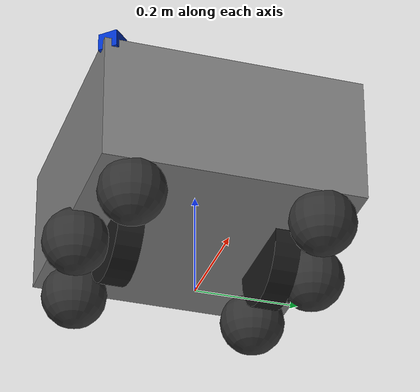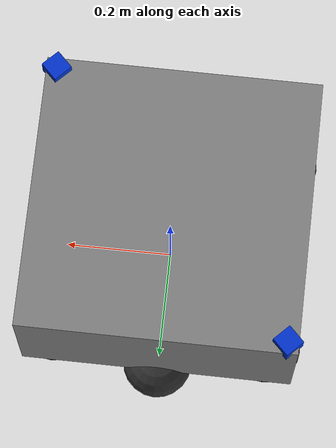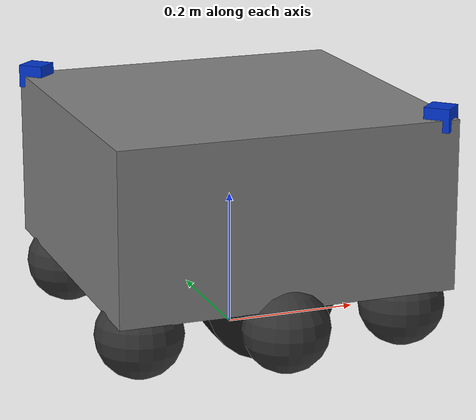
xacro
<?xml version="1.0"?>
<robot xmlns:xacro="http://www.ros.org/wiki/xacro" name="amr">

  <xacro:property name="body_length" value="0.50"/>
  <xacro:property name="body_width"  value="0.50"/>
  <xacro:property name="body_height" value="0.25"/>
  <xacro:property name="body_mass"   value="80.0"/>

  <xacro:property name="wheel_radius"     value="0.10"/>
  <xacro:property name="wheel_width"      value="0.05"/>
  <xacro:property name="wheel_mass"       value="3.0"/>
  <xacro:property name="wheel_separation" value="0.30"/>

  <xacro:macro name="box_inertia" params="m x y z">
    <inertial>
      <mass value="${m}"/>
      <inertia
        ixx="${m/12*(y*y+z*z)}" ixy="0.0" ixz="0.0"
        iyy="${m/12*(x*x+z*z)}" iyz="0.0"
        izz="${m/12*(x*x+y*y)}"/>
    </inertial>
  </xacro:macro>

  <xacro:macro name="cylinder_inertia_y" params="m r h">
    <inertial>
      <mass value="${m}"/>
      <inertia
        ixx="${m/12*(3*r*r+h*h)}" ixy="0.0" ixz="0.0"
        iyy="${m/2*r*r}"          iyz="0.0"
        izz="${m/12*(3*r*r+h*h)}"/>
    </inertial>
  </xacro:macro>

  <link name="base_footprint"/>

  <joint name="base_footprint_joint" type="fixed">
    <parent link="base_footprint"/>
    <child  link="base_link"/>
    <origin xyz="0 0 ${wheel_radius}" rpy="0 0 0"/>
  </joint>

  <link name="base_link">
    <visual>
      <origin xyz="0 0 ${body_height/2}" rpy="0 0 0"/>
      <geometry>
        <box size="${body_length} ${body_width} ${body_height}"/>
      </geometry>
      <material name="grey"><color rgba="0.5 0.5 0.5 1.0"/></material>
    </visual>
    <collision>
      <origin xyz="0 0 ${body_height/2}" rpy="0 0 0"/>
      <geometry>
        <box size="${body_length} ${body_width} ${body_height}"/>
      </geometry>
    </collision>
    <xacro:box_inertia m="${body_mass}" x="${body_length}" y="${body_width}" z="${body_height}"/>
  </link>

  <xacro:macro name="drive_wheel" params="name reflect">
    <link name="wheel_${name}_link">
      <visual>
        <origin xyz="0 0 0" rpy="${pi/2} 0 0"/>
        <geometry>
          <cylinder radius="${wheel_radius}" length="${wheel_width}"/>
        </geometry>
        <material name="black"><color rgba="0.1 0.1 0.1 1.0"/></material>
      </visual>
      <collision>
        <origin xyz="0 0 0" rpy="${pi/2} 0 0"/>
        <geometry>
          <cylinder radius="${wheel_radius}" length="${wheel_width}"/>
        </geometry>
      </collision>
      <xacro:cylinder_inertia_y m="${wheel_mass}" r="${wheel_radius}" h="${wheel_width}"/>
    </link>
    <joint name="wheel_${name}_joint" type="continuous">
      <parent link="base_link"/>
      <child  link="wheel_${name}_link"/>
      <origin xyz="0 ${reflect * wheel_separation/2} 0" rpy="0 0 0"/>
      <axis xyz="0 1 0"/>
    </joint>
  </xacro:macro>

  <xacro:drive_wheel name="left"  reflect=" 1"/>
  <xacro:drive_wheel name="right" reflect="-1"/>

  <xacro:property name="caster_radius" value="0.0635"/>
  <xacro:property name="caster_mass"   value="0.8"/>

  <xacro:macro name="sphere_inertia" params="m r">
    <inertial>
      <mass value="${m}"/>
      <inertia
        ixx="${2/5*m*r*r}" ixy="0.0" ixz="0.0"
        iyy="${2/5*m*r*r}" iyz="0.0"
        izz="${2/5*m*r*r}"/>
    </inertial>
  </xacro:macro>

  <xacro:macro name="caster_wheel" params="name xp yp">
    <link name="caster_${name}_link">
      <visual>
        <geometry><sphere radius="${caster_radius}"/></geometry>
        <material name="dark_grey"><color rgba="0.2 0.2 0.2 1.0"/></material>
      </visual>
      <collision>
        <geometry><sphere radius="${caster_radius}"/></geometry>
      </collision>
      <xacro:sphere_inertia m="${caster_mass}" r="${caster_radius}"/>
    </link>
    <joint name="caster_${name}_joint" type="fixed">
      <parent link="base_link"/>
      <child  link="caster_${name}_link"/>
      <origin xyz="${xp} ${yp} ${-wheel_radius+caster_radius+0.002}" rpy="0 0 0"/>
    </joint>

    <gazebo reference="caster_${name}_link">
      <mu1>0.0</mu1>
      <mu2>0.0</mu2>
      <material>Gazebo/DarkGrey</material>
    </gazebo>
  </xacro:macro>

  <xacro:caster_wheel name="front_left"  xp=" 0.20" yp=" 0.18"/>
  <xacro:caster_wheel name="front_right" xp=" 0.20" yp="-0.18"/>
  <xacro:caster_wheel name="mid_left"    xp=" 0.00" yp=" 0.23"/>
  <xacro:caster_wheel name="mid_right"   xp=" 0.00" yp="-0.23"/>
  <xacro:caster_wheel name="rear_left"   xp="-0.20" yp=" 0.18"/>
  <xacro:caster_wheel name="rear_right"  xp="-0.20" yp="-0.18"/>

  <gazebo reference="base_link">
    <material>Gazebo/Grey</material>
    <mu1>0.0</mu1>
    <mu2>0.0</mu2>
  </gazebo>

  <gazebo reference="wheel_left_link">
    <material>Gazebo/Black</material>
    <mu1>1.0</mu1><mu2>1.0</mu2>
    <kp>500000.0</kp><kd>10.0</kd>
    <minDepth>0.001</minDepth>
  </gazebo>

  <gazebo reference="wheel_right_link">
    <material>Gazebo/Black</material>
    <mu1>1.0</mu1><mu2>1.0</mu2>
    <kp>500000.0</kp><kd>10.0</kd>
    <minDepth>0.001</minDepth>
  </gazebo>

  <gazebo>
    <plugin name="diff_drive" filename="libgazebo_ros_diff_drive.so">
      <ros>
        <remapping>cmd_vel:=cmd_vel</remapping>
        <remapping>odom:=odom</remapping>
      </ros>
      <left_joint>wheel_left_joint</left_joint>
      <right_joint>wheel_right_joint</right_joint>
      <wheel_separation>${wheel_separation}</wheel_separation>
      <wheel_diameter>${2*wheel_radius}</wheel_diameter>

      <max_wheel_torque>50000.0</max_wheel_torque>
      <max_wheel_acceleration>10.0</max_wheel_acceleration>

      <publish_odom>true</publish_odom>
      <publish_odom_tf>true</publish_odom_tf>
      <publish_wheel_tf>true</publish_wheel_tf>
      <publish_wheel_joint_state>true</publish_wheel_joint_state>
      <odometry_frame>odom</odometry_frame>
      <robot_base_frame>base_footprint</robot_base_frame>
    </plugin>
  </gazebo>

  <xacro:property name="lidar_x"    value="0.038"/>
  <xacro:property name="lidar_y"    value="0.038"/>
  <xacro:property name="lidar_z"    value="0.034"/>
  <xacro:property name="lidar_mass" value="0.10"/>

  <xacro:macro name="lidar_sensor" params="name xp yp yaw topic_name">
    <link name="${name}_link">
      <visual>
        <geometry><box size="${lidar_x} ${lidar_y} ${lidar_z}"/></geometry>
        <material name="blue"><color rgba="0.0 0.2 0.8 1.0"/></material>
      </visual>
      <collision>
        <geometry><box size="${lidar_x} ${lidar_y} ${lidar_z}"/></geometry>
      </collision>
      <inertial>
        <mass value="${lidar_mass}"/>
        <inertia ixx="1e-6" ixy="0" ixz="0" iyy="1e-6" iyz="0" izz="1e-6"/>
      </inertial>
    </link>
    <joint name="${name}_joint" type="fixed">
      <parent link="base_link"/>
      <child  link="${name}_link"/>
      <origin xyz="${xp} ${yp} ${body_height}" rpy="0 0 ${yaw}"/>
    </joint>

    <gazebo reference="${name}_link">
      <material>Gazebo/Blue</material>
      <sensor name="${name}_sensor" type="ray">
        <always_on>true</always_on>
        <visualize>true</visualize> <update_rate>10</update_rate>
        <ray>
          <scan>
            <horizontal>
              <samples>210</samples>
              <resolution>1</resolution>
              <min_angle>-1.8326</min_angle>
              <max_angle>1.8326</max_angle>
            </horizontal>
          </scan>
          <range>
            <min>0.15</min> <max>12.0</max>
            <resolution>0.01</resolution>
          </range>
        </ray>
        <plugin name="${name}_plugin" filename="libgazebo_ros_ray_sensor.so">
          <ros><remapping>~/out:=${topic_name}</remapping></ros>
          <output_type>sensor_msgs/LaserScan</output_type>
          <frame_name>${name}_link</frame_name>
        </plugin>
      </sensor>
    </gazebo>
  </xacro:macro>

  <xacro:lidar_sensor name="lidar_front_right" xp=" 0.23" yp="-0.23" yaw="${-pi/4}" topic_name="scan_front"/>
  <xacro:lidar_sensor name="lidar_rear_left"   xp="-0.23" yp=" 0.23" yaw="${3*pi/4}" topic_name="scan_rear"/>

  <xacro:macro name="imu_sensor" params="name xp yp">
    <link name="${name}_link">
      <visual>
        <geometry><box size="0.025 0.025 0.005"/></geometry>
        <material name="green"><color rgba="0.0 0.8 0.0 1.0"/></material>
      </visual>
      <inertial>
        <mass value="0.02"/>
        <inertia ixx="1e-6" ixy="0" ixz="0" iyy="1e-6" iyz="0" izz="1e-6"/>
      </inertial>
    </link>
    <joint name="${name}_joint" type="fixed">
      <parent link="base_link"/>
      <child  link="${name}_link"/>
      <origin xyz="${xp} ${yp} ${body_height-0.01}" rpy="0 0 0"/>
    </joint>

    <gazebo reference="${name}_link">
      <material>Gazebo/Green</material>
      <sensor name="${name}_sensor" type="imu">
        <always_on>true</always_on>
        <update_rate>50</update_rate>
        <plugin name="${name}_plugin" filename="libgazebo_ros_imu_sensor.so">
          <ros><remapping>~/out:=${name}/data</remapping></ros>
          <initial_orientation_as_reference>false</initial_orientation_as_reference>
        </plugin>
      </sensor>
    </gazebo>
  </xacro:macro>

  <xacro:imu_sensor name="imu_0" xp=" 0.10" yp="0.0"/>
  <xacro:imu_sensor name="imu_1" xp="-0.10" yp="0.0"/>

</robot>
